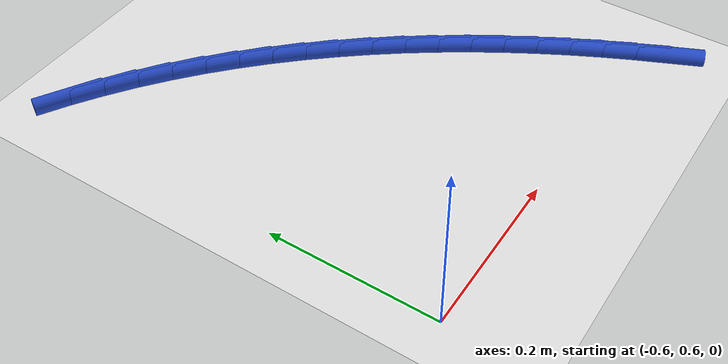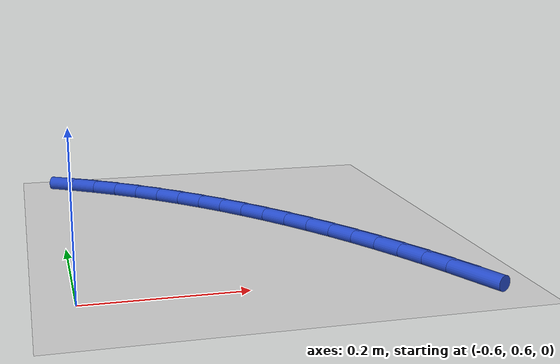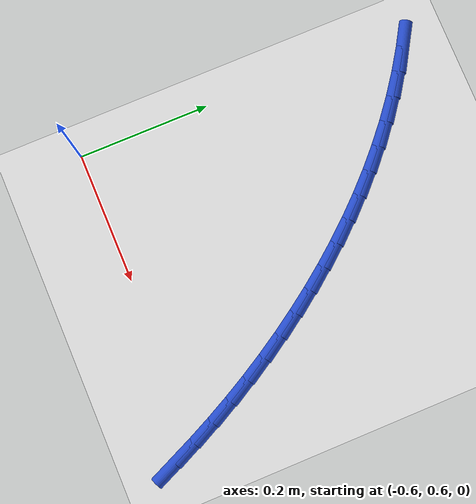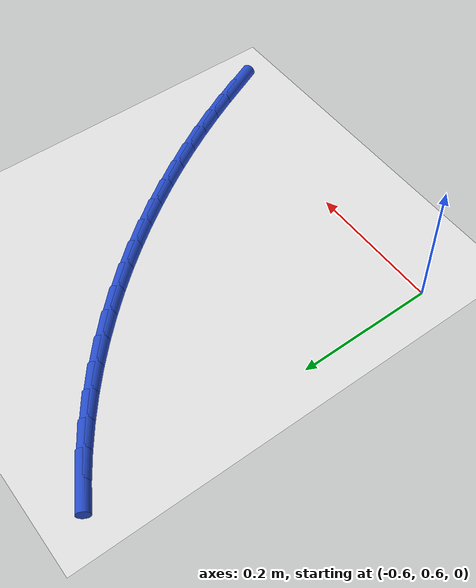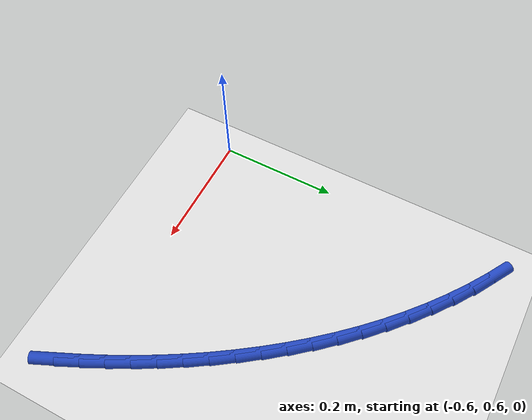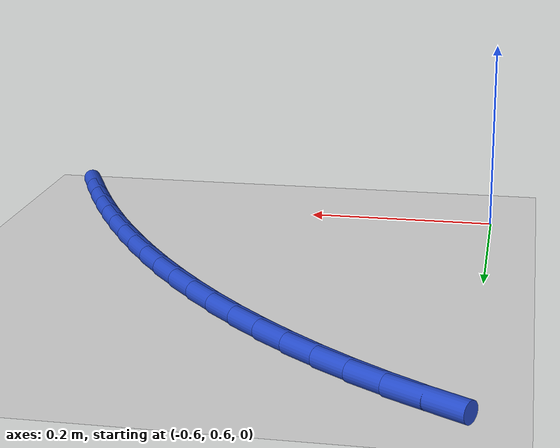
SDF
<sdf version="1.6">
 <world name="default">
  <model name="ground_plane">
   <static>1</static>
   <link name="link">
    <collision name="collision">
     <geometry><plane><normal>0 0 1</normal><size>100 100</size></plane></geometry>
     <surface><friction><ode><mu>100</mu><mu2>50</mu2></ode></friction></surface>
    </collision>
    <visual name="visual">
     <cast_shadows>0</cast_shadows>
     <geometry><plane><normal>0 0 1</normal><size>100 100</size></plane></geometry>
     <material>
      <script><uri>file://media/materials/scripts/gazebo.material</uri><name>Gazebo/WhiteGlow</name></script>
     </material>
    </visual>
   </link>
  </model>
  <model name="line">
   <link name="link_15">
    <pose>-0.13290909016674587 0.5630677905844803 0.01 0 1.57 -1.1520919601910362</pose>
    <collision name="collision">
     <geometry><cylinder><radius>0.01</radius><length>0.08</length></cylinder></geometry>
    </collision>
    <visual name="visual">
     <material>
      <script><name>Gazebo/Blue</name><uri>file://media/materials/scripts/gazebo.material</uri></script>
     </material>
     <geometry><cylinder><radius>0.01</radius><length>0.08</length></cylinder></geometry>
    </visual>
   </link>
   <link name="link_16">
    <pose>-0.14867548155540994 0.5984963369723536 0.01 0 1.57 -1.1265872670047505</pose>
    <collision name="collision">
     <geometry><cylinder><radius>0.01</radius><length>0.08</length></cylinder></geometry>
    </collision>
    <visual name="visual">
     <material>
      <script><name>Gazebo/Blue</name><uri>file://media/materials/scripts/gazebo.material</uri></script>
     </material>
     <geometry><cylinder><radius>0.01</radius><length>0.08</length></cylinder></geometry>
    </visual>
   </link>
   <link name="link_17">
    <pose>-0.1653573007233008 0.6335471313608452 0.01 0 1.57 -1.1003561935403843</pose>
    <collision name="collision">
     <geometry><cylinder><radius>0.01</radius><length>0.08</length></cylinder></geometry>
    </collision>
    <visual name="visual">
     <material>
      <script><name>Gazebo/Blue</name><uri>file://media/materials/scripts/gazebo.material</uri></script>
     </material>
     <geometry><cylinder><radius>0.01</radius><length>0.08</length></cylinder></geometry>
    </visual>
   </link>
   <link name="link_18">
    <pose>-0.1829795614008998 0.6682011672431697 0.01 0 1.57 -1.0734259530608419</pose>
    <collision name="collision">
     <geometry><cylinder><radius>0.01</radius><length>0.08</length></cylinder></geometry>
    </collision>
    <visual name="visual">
     <material>
      <script><name>Gazebo/Blue</name><uri>file://media/materials/scripts/gazebo.material</uri></script>
     </material>
     <geometry><cylinder><radius>0.01</radius><length>0.08</length></cylinder></geometry>
    </visual>
   </link>
   <link name="link_19">
    <pose>-0.20156727731868795 0.7024394381125406 0.01 0 1.57 -1.0458291172690408</pose>
    <collision name="collision">
     <geometry><cylinder><radius>0.01</radius><length>0.08</length></cylinder></geometry>
    </collision>
    <visual name="visual">
     <material>
      <script><name>Gazebo/Blue</name><uri>file://media/materials/scripts/gazebo.material</uri></script>
     </material>
     <geometry><cylinder><radius>0.01</radius><length>0.08</length></cylinder></geometry>
    </visual>
   </link>
   <link name="link_20">
    <pose>-0.22114546114582515 0.7362429347539926 0.01 0 1.57 -1.0175429551043644</pose>
    <collision name="collision">
     <geometry><cylinder><radius>0.01</radius><length>0.08</length></cylinder></geometry>
    </collision>
    <visual name="visual">
     <material>
      <script><name>Gazebo/Blue</name><uri>file://media/materials/scripts/gazebo.material</uri></script>
     </material>
     <geometry><cylinder><radius>0.01</radius><length>0.08</length></cylinder></geometry>
    </visual>
   </link>
   <link name="link_21">
    <pose>-0.24173426178577664 0.7695802370544793 0.01 0 1.57 -0.9883506114164637</pose>
    <collision name="collision">
     <geometry><cylinder><radius>0.01</radius><length>0.08</length></cylinder></geometry>
    </collision>
    <visual name="visual">
     <material>
      <script><name>Gazebo/Blue</name><uri>file://media/materials/scripts/gazebo.material</uri></script>
     </material>
     <geometry><cylinder><radius>0.01</radius><length>0.08</length></cylinder></geometry>
    </visual>
   </link>
   <link name="link_22">
    <pose>-0.2633377608457779 0.8023789258914512 0.01 0 1.57 -0.958122443582398</pose>
    <collision name="collision">
     <geometry><cylinder><radius>0.01</radius><length>0.08</length></cylinder></geometry>
    </collision>
    <visual name="visual">
     <material>
      <script><name>Gazebo/Blue</name><uri>file://media/materials/scripts/gazebo.material</uri></script>
     </material>
     <geometry><cylinder><radius>0.01</radius><length>0.08</length></cylinder></geometry>
    </visual>
   </link>
   <link name="link_23">
    <pose>-0.28595672673464445 0.8345581278354499 0.01 0 1.57 -0.9267653982786357</pose>
    <collision name="collision">
     <geometry><cylinder><radius>0.01</radius><length>0.08</length></cylinder></geometry>
    </collision>
    <visual name="visual">
     <material>
      <script><name>Gazebo/Blue</name><uri>file://media/materials/scripts/gazebo.material</uri></script>
     </material>
     <geometry><cylinder><radius>0.01</radius><length>0.08</length></cylinder></geometry>
    </visual>
   </link>
   <link name="link_24">
    <pose>-0.30959192786119155 0.8660369694570168 0.01 0 1.57 -0.8941886741220024</pose>
    <collision name="collision">
     <geometry><cylinder><radius>0.01</radius><length>0.08</length></cylinder></geometry>
    </collision>
    <visual name="visual">
     <material>
      <script><name>Gazebo/Blue</name><uri>file://media/materials/scripts/gazebo.material</uri></script>
     </material>
     <geometry><cylinder><radius>0.01</radius><length>0.08</length></cylinder></geometry>
    </visual>
   </link>
   <link name="link_25">
    <pose>-0.3342441326342345 0.8967345773266937 0.01 0 1.57 -0.8603048248830925</pose>
    <collision name="collision">
     <geometry><cylinder><radius>0.01</radius><length>0.08</length></cylinder></geometry>
    </collision>
    <visual name="visual">
     <material>
      <script><name>Gazebo/Blue</name><uri>file://media/materials/scripts/gazebo.material</uri></script>
     </material>
     <geometry><cylinder><radius>0.01</radius><length>0.08</length></cylinder></geometry>
    </visual>
   </link>
   <link name="link_26">
    <pose>-0.35991410946258917 0.9265700780150227 0.01 0 1.57 -0.8250312606817714</pose>
    <collision name="collision">
     <geometry><cylinder><radius>0.01</radius><length>0.08</length></cylinder></geometry>
    </collision>
    <visual name="visual">
     <material>
      <script><name>Gazebo/Blue</name><uri>file://media/materials/scripts/gazebo.material</uri></script>
     </material>
     <geometry><cylinder><radius>0.01</radius><length>0.08</length></cylinder></geometry>
    </visual>
   </link>
   <link name="link_27">
    <pose>-0.3866026267550707 0.9554625980925454 0.01 0 1.57 -0.7882921823689462</pose>
    <collision name="collision">
     <geometry><cylinder><radius>0.01</radius><length>0.08</length></cylinder></geometry>
    </collision>
    <visual name="visual">
     <material>
      <script><name>Gazebo/Blue</name><uri>file://media/materials/scripts/gazebo.material</uri></script>
     </material>
     <geometry><cylinder><radius>0.01</radius><length>0.08</length></cylinder></geometry>
    </visual>
   </link>
   <link name="link_28">
    <pose>-0.4143104529204943 0.983331264129803 0.01 0 1.57 -0.7500209726348099</pose>
    <collision name="collision">
     <geometry><cylinder><radius>0.01</radius><length>0.08</length></cylinder></geometry>
    </collision>
    <visual name="visual">
     <material>
      <script><name>Gazebo/Blue</name><uri>file://media/materials/scripts/gazebo.material</uri></script>
     </material>
     <geometry><cylinder><radius>0.01</radius><length>0.08</length></cylinder></geometry>
    </visual>
   </link>
   <link name="link_29">
    <pose>-0.44303835636767575 1.0100952026973378 0.01 0 1.57 -0.7101630459594466</pose>
    <collision name="collision">
     <geometry><cylinder><radius>0.01</radius><length>0.08</length></cylinder></geometry>
    </collision>
    <visual name="visual">
     <material>
      <script><name>Gazebo/Blue</name><uri>file://media/materials/scripts/gazebo.material</uri></script>
     </material>
     <geometry><cylinder><radius>0.01</radius><length>0.08</length></cylinder></geometry>
    </visual>
   </link>
   <link name="link_30">
    <pose>-0.4727871055054301 1.0356735403656914 0.01 0 1.57 -0.6686791260789898</pose>
    <collision name="collision">
     <geometry><cylinder><radius>0.01</radius><length>0.08</length></cylinder></geometry>
    </collision>
    <visual name="visual">
     <material>
      <script><name>Gazebo/Blue</name><uri>file://media/materials/scripts/gazebo.material</uri></script>
     </material>
     <geometry><cylinder><radius>0.01</radius><length>0.08</length></cylinder></geometry>
    </visual>
   </link>
   <link name="link_31">
    <pose>-0.503557468742573 1.059985403705405 0.01 0 1.57 -0.6255488726471353</pose>
    <collision name="collision">
     <geometry><cylinder><radius>0.01</radius><length>0.08</length></cylinder></geometry>
    </collision>
    <visual name="visual">
     <material>
      <script><name>Gazebo/Blue</name><uri>file://media/materials/scripts/gazebo.material</uri></script>
     </material>
     <geometry><cylinder><radius>0.01</radius><length>0.08</length></cylinder></geometry>
    </visual>
   </link>
   <link name="link_32">
    <pose>-0.5353502144879201 1.0829499192870213 0.01 0 1.57 -0.5807747183407559</pose>
    <collision name="collision">
     <geometry><cylinder><radius>0.01</radius><length>0.08</length></cylinder></geometry>
    </collision>
    <visual name="visual">
     <material>
      <script><name>Gazebo/Blue</name><uri>file://media/materials/scripts/gazebo.material</uri></script>
     </material>
     <geometry><cylinder><radius>0.01</radius><length>0.08</length></cylinder></geometry>
    </visual>
   </link>
   <link name="link_33">
    <pose>-0.568166111150286 1.104486213681081 0.01 0 1.57 -0.5343857066914498</pose>
    <collision name="collision">
     <geometry><cylinder><radius>0.01</radius><length>0.08</length></cylinder></geometry>
    </collision>
    <visual name="visual">
     <material>
      <script><name>Gazebo/Blue</name><uri>file://media/materials/scripts/gazebo.material</uri></script>
     </material>
     <geometry><cylinder><radius>0.01</radius><length>0.08</length></cylinder></geometry>
    </visual>
   </link>
  </model>
 </world>
</sdf>
